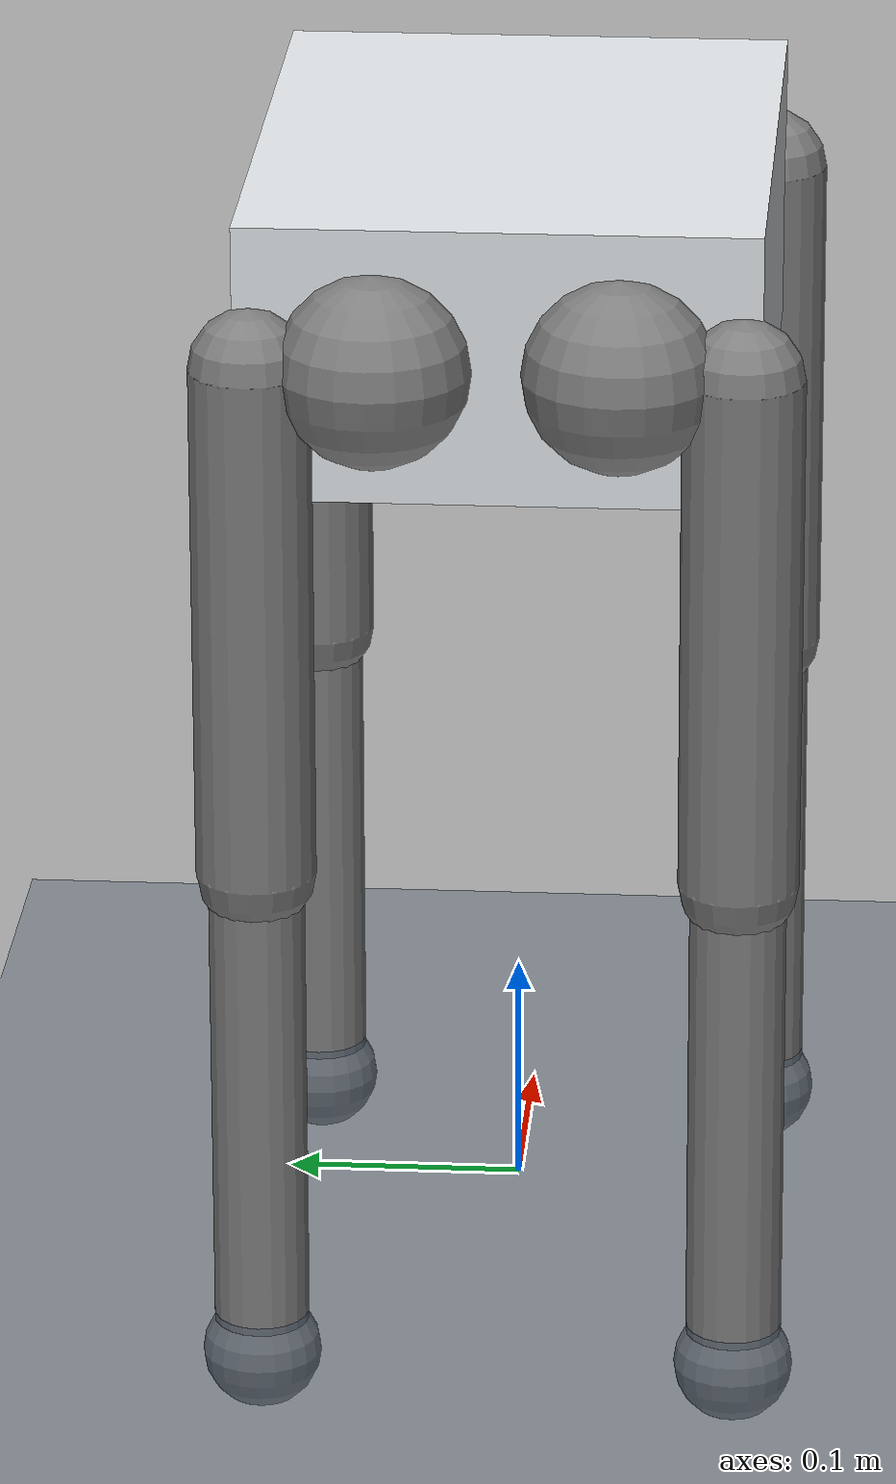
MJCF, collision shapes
<mujoco model="zof_deploy">
  <!--
    部署用完整场景：地板 + 机器人 + 只有力矩控制器
    actuator 顺序：FR FL RR RL（每腿 hip/thigh/calf），共 12 个
    ctrl[0:12] 直接对应 12 个关节力矩 (Nm)
  -->

  <compiler angle="radian" meshdir="../meshes/"/>
  <size njmax="500" nconmax="100"/>

  <option timestep="0.005" gravity="0 0 -9.81"/>

  <visual>
    <headlight diffuse="0.6 0.6 0.6" ambient="0.3 0.3 0.3" specular="0 0 0"/>
    <rgba haze="0.15 0.25 0.35 1"/>
  </visual>

  <asset>
    <texture type="skybox" builtin="gradient" rgb1="0.3 0.5 0.7" rgb2="0 0 0" width="512" height="3072"/>
    <texture type="2d" name="groundplane" builtin="checker" mark="edge"
             rgb1="0.2 0.3 0.4" rgb2="0.1 0.2 0.3" markrgb="0.8 0.8 0.8" width="300" height="300"/>
    <material name="groundplane" texture="groundplane" texuniform="true" texrepeat="5 5" reflectance="0.2"/>

    <mesh name="base"     file="base.STL"/>
    <mesh name="FL_hip"   file="FL_hip.STL"/>
    <mesh name="FL_thigh" file="FL_thigh.STL"/>
    <mesh name="FL_calf"  file="FL_calf.STL"/>
    <mesh name="FL_foot"  file="FL_foot.STL"/>
    <mesh name="FR_hip"   file="FR_hip.STL"/>
    <mesh name="FR_thigh" file="FR_thigh.STL"/>
    <mesh name="FR_calf"  file="FR_calf.STL"/>
    <mesh name="FR_foot"  file="FR_foot.STL"/>
    <mesh name="RL_hip"   file="RL_hip.STL"/>
    <mesh name="RL_thigh" file="RL_thigh.STL"/>
    <mesh name="RL_calf"  file="RL_calf.STL"/>
    <mesh name="RL_foot"  file="RL_foot.STL"/>
    <mesh name="RR_hip"   file="RR_hip.STL"/>
    <mesh name="RR_thigh" file="RR_thigh.STL"/>
    <mesh name="RR_calf"  file="RR_calf.STL"/>
    <mesh name="RR_foot"  file="RR_foot.STL"/>
  </asset>

  <default>
    <joint damping="0.001" armature="0.01" frictionloss="0.1"/>
    <geom friction="0.6" margin="0.001"/>
  </default>

  <worldbody>
    <light pos="0 0 3" dir="0 0 -1" directional="true"/>
    <geom name="floor" size="0 0 0.05" type="plane" material="groundplane"/>

    <body name="robot" pos="0 0 0.42" quat="1 0 0 0">
      <joint name="float_base" type="free"/>
      <inertial pos="0 0 0" mass="4.87475244" diaginertia="0.01839234 0.05151497 0.06165645"/>
      <geom type="mesh" contype="0" conaffinity="0" group="1" rgba="0.9 0.92 0.93 1" mesh="base"/>
      <geom type="box" size="0.136 0.107 0.058" rgba="0.9 0.92 0.93 0.3"/>

      <!-- FR leg -->
      <body name="FR_hip" pos="0.1403 -0.0498 0">
        <joint name="FR_hip_joint" axis="1 0 0" range="-1.0036 1.0036"/>
        <inertial pos="0 0 0" mass="0.31" diaginertia="0.0004 0.0004 0.0003"/>
        <geom type="mesh" contype="0" conaffinity="0" group="1" mesh="FR_hip"/>
        <geom type="sphere" size="0.04" pos="0 0 0"/>
        <body name="FR_thigh" pos="0 -0.0498 0">
          <joint name="FR_thigh_joint" axis="0 1 0" range="-0.56723 4.9306"/>
          <inertial pos="0 0 -0.11" mass="0.75" diaginertia="0.003 0.003 0.0006"/>
          <geom type="mesh" contype="0" conaffinity="0" group="1" mesh="FR_thigh"/>
          <geom type="capsule" fromto="0 0 0 0 0 -0.22" size="0.025"/>
          <body name="FR_calf" pos="0 0 -0.22">
            <joint name="FR_calf_joint" axis="0 1 0" range="-2.618 -0.69813"/>
            <inertial pos="0 0 -0.11" mass="0.36" diaginertia="0.001 0.001 0.00015"/>
            <geom type="mesh" contype="0" conaffinity="0" group="1" mesh="FR_calf"/>
            <geom type="capsule" fromto="0 0 0 0 0 -0.219" size="0.02"/>
            <geom name="FR_foot" type="sphere" size="0.025" pos="0 0 -0.219"/>
          </body>
        </body>
      </body>

      <!-- FL leg -->
      <body name="FL_hip" pos="0.1403 0.0498 0">
        <joint name="FL_hip_joint" axis="1 0 0" range="-1.0036 1.0036"/>
        <inertial pos="0 0 0" mass="0.31" diaginertia="0.0004 0.0004 0.0003"/>
        <geom type="mesh" contype="0" conaffinity="0" group="1" mesh="FL_hip"/>
        <geom type="sphere" size="0.04" pos="0 0 0"/>
        <body name="FL_thigh" pos="0 0.0498 0">
          <joint name="FL_thigh_joint" axis="0 1 0" range="-0.56723 4.9306"/>
          <inertial pos="0 0 -0.11" mass="0.75" diaginertia="0.003 0.003 0.0006"/>
          <geom type="mesh" contype="0" conaffinity="0" group="1" mesh="FL_thigh"/>
          <geom type="capsule" fromto="0 0 0 0 0 -0.22" size="0.025"/>
          <body name="FL_calf" pos="0 0 -0.22">
            <joint name="FL_calf_joint" axis="0 1 0" range="-2.618 -0.69813"/>
            <inertial pos="0 0 -0.11" mass="0.36" diaginertia="0.001 0.001 0.00015"/>
            <geom type="mesh" contype="0" conaffinity="0" group="1" mesh="FL_calf"/>
            <geom type="capsule" fromto="0 0 0 0 0 -0.219" size="0.02"/>
            <geom name="FL_foot" type="sphere" size="0.025" pos="0 0 -0.219"/>
          </body>
        </body>
      </body>

      <!-- RR leg -->
      <body name="RR_hip" pos="-0.1403 -0.0498 0">
        <joint name="RR_hip_joint" axis="1 0 0" range="-1.0036 1.0036"/>
        <inertial pos="0 0 0" mass="0.31" diaginertia="0.0004 0.0004 0.0003"/>
        <geom type="mesh" contype="0" conaffinity="0" group="1" mesh="RR_hip"/>
        <geom type="sphere" size="0.04" pos="0 0 0"/>
        <body name="RR_thigh" pos="0 -0.0498 0">
          <joint name="RR_thigh_joint" axis="0 1 0" range="-0.56723 4.9306"/>
          <inertial pos="0 0 -0.11" mass="0.75" diaginertia="0.003 0.003 0.0006"/>
          <geom type="mesh" contype="0" conaffinity="0" group="1" mesh="RR_thigh"/>
          <geom type="capsule" fromto="0 0 0 0 0 -0.22" size="0.025"/>
          <body name="RR_calf" pos="0 0 -0.22">
            <joint name="RR_calf_joint" axis="0 1 0" range="-2.618 -0.69813"/>
            <inertial pos="0 0 -0.11" mass="0.36" diaginertia="0.001 0.001 0.00015"/>
            <geom type="mesh" contype="0" conaffinity="0" group="1" mesh="RR_calf"/>
            <geom type="capsule" fromto="0 0 0 0 0 -0.219" size="0.02"/>
            <geom name="RR_foot" type="sphere" size="0.025" pos="0 0 -0.219"/>
          </body>
        </body>
      </body>

      <!-- RL leg -->
      <body name="RL_hip" pos="-0.1403 0.0498 0">
        <joint name="RL_hip_joint" axis="1 0 0" range="-1.0036 1.0036"/>
        <inertial pos="0 0 0" mass="0.31" diaginertia="0.0004 0.0004 0.0003"/>
        <geom type="mesh" contype="0" conaffinity="0" group="1" mesh="RL_hip"/>
        <geom type="sphere" size="0.04" pos="0 0 0"/>
        <body name="RL_thigh" pos="0 0.0498 0">
          <joint name="RL_thigh_joint" axis="0 1 0" range="-0.56723 4.9306"/>
          <inertial pos="0 0 -0.11" mass="0.75" diaginertia="0.003 0.003 0.0006"/>
          <geom type="mesh" contype="0" conaffinity="0" group="1" mesh="RL_thigh"/>
          <geom type="capsule" fromto="0 0 0 0 0 -0.22" size="0.025"/>
          <body name="RL_calf" pos="0 0 -0.22">
            <joint name="RL_calf_joint" axis="0 1 0" range="-2.618 -0.69813"/>
            <inertial pos="0 0 -0.11" mass="0.36" diaginertia="0.001 0.001 0.00015"/>
            <geom type="mesh" contype="0" conaffinity="0" group="1" mesh="RL_calf"/>
            <geom type="capsule" fromto="0 0 0 0 0 -0.219" size="0.02"/>
            <geom name="RL_foot" type="sphere" size="0.025" pos="0 0 -0.219"/>
          </body>
        </body>
      </body>

    </body>
  </worldbody>

  <actuator>
    <!-- 力矩控制，顺序：FR FL RR RL（ctrl[0:12]） -->
    <motor name="FR_hip_joint"   joint="FR_hip_joint"   ctrlrange="-23.7 23.7"/>
    <motor name="FR_thigh_joint" joint="FR_thigh_joint" ctrlrange="-23.7 23.7"/>
    <motor name="FR_calf_joint"  joint="FR_calf_joint"  ctrlrange="-35.5 35.5"/>
    <motor name="FL_hip_joint"   joint="FL_hip_joint"   ctrlrange="-23.7 23.7"/>
    <motor name="FL_thigh_joint" joint="FL_thigh_joint" ctrlrange="-23.7 23.7"/>
    <motor name="FL_calf_joint"  joint="FL_calf_joint"  ctrlrange="-35.5 35.5"/>
    <motor name="RR_hip_joint"   joint="RR_hip_joint"   ctrlrange="-23.7 23.7"/>
    <motor name="RR_thigh_joint" joint="RR_thigh_joint" ctrlrange="-23.7 23.7"/>
    <motor name="RR_calf_joint"  joint="RR_calf_joint"  ctrlrange="-35.5 35.5"/>
    <motor name="RL_hip_joint"   joint="RL_hip_joint"   ctrlrange="-23.7 23.7"/>
    <motor name="RL_thigh_joint" joint="RL_thigh_joint" ctrlrange="-23.7 23.7"/>
    <motor name="RL_calf_joint"  joint="RL_calf_joint"  ctrlrange="-35.5 35.5"/>
  </actuator>

</mujoco>
